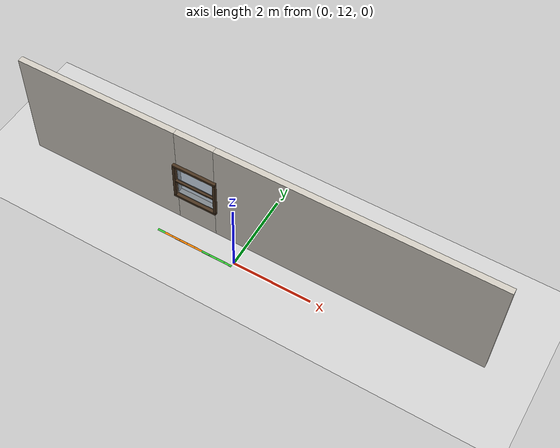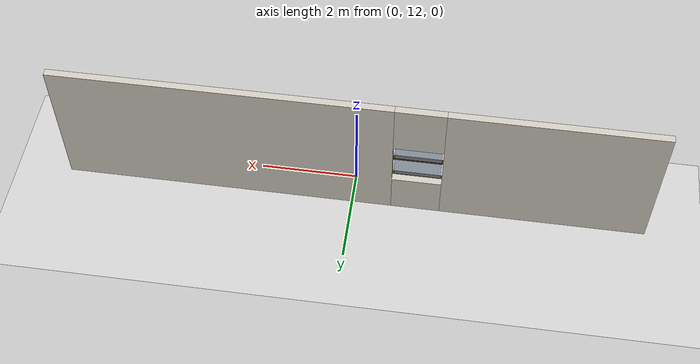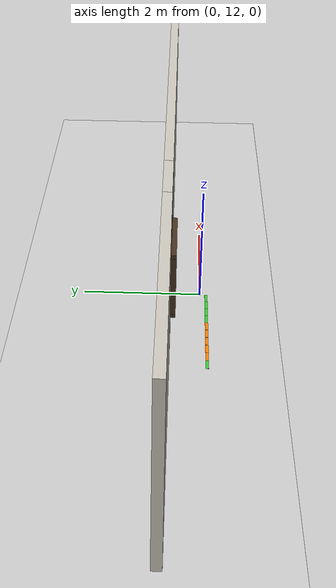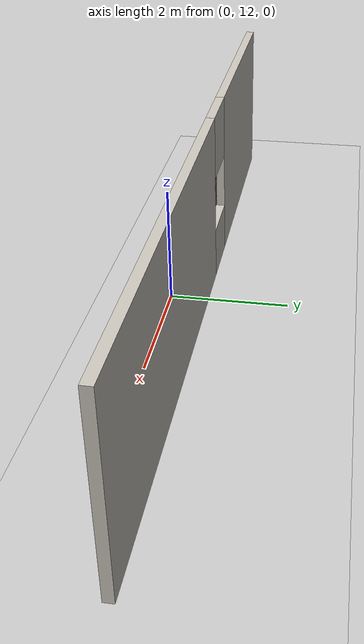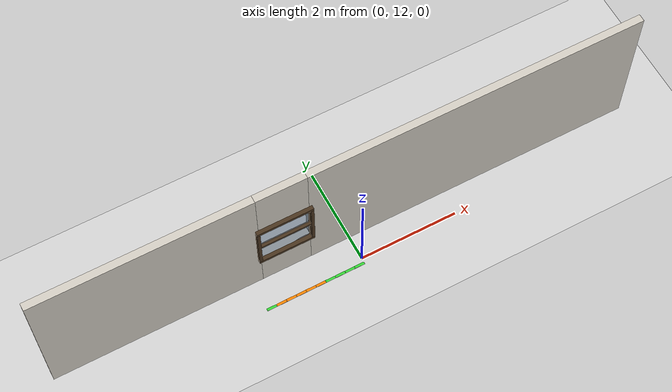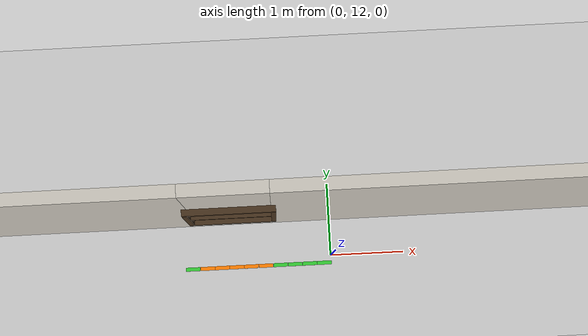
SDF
<?xml version="1.0" ?>
<sdf version='1.6'>
  <world name='strip_map_test'>

    <!-- ====== PHYSICS ====== -->
    <gravity>0 0 -9.8</gravity>
    <physics name='default_physics' default='0' type='ode'>
      <max_step_size>0.001</max_step_size>
      <real_time_factor>1</real_time_factor>
      <real_time_update_rate>1000</real_time_update_rate>
    </physics>

    <!-- ====== SCENE ====== -->
    <scene>
      <ambient>0.6 0.6 0.6 1</ambient>
      <background>0.5 0.5 0.5 1</background>
      <shadows>1</shadows>
    </scene>

    <!-- ====== SUN ====== -->
    <light name='sun' type='directional'>
      <cast_shadows>1</cast_shadows>
      <pose>0 0 10 0 -0 0</pose>
      <diffuse>0.8 0.8 0.8 1</diffuse>
      <specular>0.2 0.2 0.2 1</specular>
      <direction>-0.5 0.1 -0.9</direction>
    </light>

    <!-- ====== GROUND PLANE ====== -->
    <model name='ground_plane'>
      <static>1</static>
      <link name='link'>
        <collision name='collision'>
          <geometry><plane><normal>0 0 1</normal><size>100 100</size></plane></geometry>
        </collision>
        <visual name='visual'>
          <cast_shadows>0</cast_shadows>
          <geometry><plane><normal>0 0 1</normal><size>100 100</size></plane></geometry>
          <material><script>
            <uri>file://media/materials/scripts/gazebo.material</uri>
            <name>Gazebo/Grey</name>
          </script></material>
        </visual>
      </link>
    </model>

    <model name='test_wall'>
      <static>1</static>
      <pose>0 0 0 0 0 0</pose>
      <link name='link'>

        <!-- seg_L: x=-6.0..-1.8  width=4.2  cx=-3.9 -->
        <visual name='seg_L'>
          <pose>-3.9 12.575 1.5 0 0 0</pose>
          <geometry><box><size>4.2 0.15 3.0</size></box></geometry>
          <material>
            <ambient>0.80 0.78 0.74 1</ambient>
            <diffuse>0.80 0.78 0.74 1</diffuse>
            <specular>0.02 0.02 0.02 1</specular>
          </material>
        </visual>
        <collision name='cL'>
          <pose>-3.9 12.575 1.5 0 0 0</pose>
          <geometry><box><size>4.2 0.15 3.0</size></box></geometry>
        </collision>

        <!-- win_bot: below sill  x=-1.8..-0.8  w=1.0  z=0..0.9  cz=0.45 -->
        <visual name='win_bot'>
          <pose>-1.3 12.575 0.45 0 0 0</pose>
          <geometry><box><size>1.0 0.15 0.9</size></box></geometry>
          <material>
            <ambient>0.80 0.78 0.74 1</ambient>
            <diffuse>0.80 0.78 0.74 1</diffuse>
            <specular>0.02 0.02 0.02 1</specular>
          </material>
        </visual>
        <collision name='cWb'>
          <pose>-1.3 12.575 0.45 0 0 0</pose>
          <geometry><box><size>1.0 0.15 0.9</size></box></geometry>
        </collision>

        <!-- win_top: above head  x=-1.8..-0.8  w=1.0  z=1.9..3.0  cz=2.45 -->
        <visual name='win_top'>
          <pose>-1.3 12.575 2.45 0 0 0</pose>
          <geometry><box><size>1.0 0.15 1.1</size></box></geometry>
          <material>
            <ambient>0.80 0.78 0.74 1</ambient>
            <diffuse>0.80 0.78 0.74 1</diffuse>
            <specular>0.02 0.02 0.02 1</specular>
          </material>
        </visual>
        <collision name='cWt'>
          <pose>-1.3 12.575 2.45 0 0 0</pose>
          <geometry><box><size>1.0 0.15 1.1</size></box></geometry>
        </collision>

        <!-- seg_R: x=-0.8..+6.0  width=6.8  cx=+2.6 -->
        <visual name='seg_R'>
          <pose>2.6 12.575 1.5 0 0 0</pose>
          <geometry><box><size>6.8 0.15 3.0</size></box></geometry>
          <material>
            <ambient>0.80 0.78 0.74 1</ambient>
            <diffuse>0.80 0.78 0.74 1</diffuse>
            <specular>0.02 0.02 0.02 1</specular>
          </material>
        </visual>
        <collision name='cR'>
          <pose>2.6 12.575 1.5 0 0 0</pose>
          <geometry><box><size>6.8 0.15 3.0</size></box></geometry>
        </collision>

      </link>
    </model>

    <model name='window_frame'>
      <static>1</static>
      <pose>0 0 0 0 0 0</pose>
      <link name='link'>

        <!-- top rail  z=1.9 -->
        <visual name='top'>
          <pose>-1.3 12.47 1.93 0 0 0</pose>
          <geometry><box><size>1.12 0.10 0.06</size></box></geometry>
          <material>
            <ambient>0.22 0.16 0.10 1</ambient>
            <diffuse>0.28 0.20 0.12 1</diffuse>
            <specular>0.05 0.05 0.05 1</specular>
          </material>
        </visual>

        <!-- bottom rail  z=0.9 -->
        <visual name='bot'>
          <pose>-1.3 12.47 0.87 0 0 0</pose>
          <geometry><box><size>1.12 0.10 0.06</size></box></geometry>
          <material>
            <ambient>0.22 0.16 0.10 1</ambient>
            <diffuse>0.28 0.20 0.12 1</diffuse>
            <specular>0.05 0.05 0.05 1</specular>
          </material>
        </visual>

        <!-- left stile  x=-1.8 -->
        <visual name='left'>
          <pose>-1.83 12.47 1.4 0 0 0</pose>
          <geometry><box><size>0.06 0.10 1.0</size></box></geometry>
          <material>
            <ambient>0.22 0.16 0.10 1</ambient>
            <diffuse>0.28 0.20 0.12 1</diffuse>
            <specular>0.05 0.05 0.05 1</specular>
          </material>
        </visual>

        <!-- right stile  x=-0.8 -->
        <visual name='right'>
          <pose>-0.77 12.47 1.4 0 0 0</pose>
          <geometry><box><size>0.06 0.10 1.0</size></box></geometry>
          <material>
            <ambient>0.22 0.16 0.10 1</ambient>
            <diffuse>0.28 0.20 0.12 1</diffuse>
            <specular>0.05 0.05 0.05 1</specular>
          </material>
        </visual>

        <!-- mid rail (horizontal divider at z=1.4) -->
        <visual name='mid'>
          <pose>-1.3 12.47 1.4 0 0 0</pose>
          <geometry><box><size>1.0 0.08 0.04</size></box></geometry>
          <material>
            <ambient>0.22 0.16 0.10 1</ambient>
            <diffuse>0.28 0.20 0.12 1</diffuse>
            <specular>0.05 0.05 0.05 1</specular>
          </material>
        </visual>

        <!-- glass pane (light blue, slightly transparent-ish) -->
        <visual name='glass'>
          <pose>-1.3 12.50 1.4 0 0 0</pose>
          <geometry><box><size>0.94 0.02 0.94</size></box></geometry>
          <material>
            <ambient>0.55 0.65 0.75 0.6</ambient>
            <diffuse>0.55 0.65 0.75 0.6</diffuse>
            <specular>0.8 0.8 0.9 1</specular>
          </material>
        </visual>

      </link>
    </model>

    <!-- Strip boundary markers on floor (10 strips, 0.203m each, starting x=0 going -x) -->
    <model name='strip_marker_0'><static>1</static><pose>-0.101 11.9 0.002 0 0 0</pose>
      <link name='link'><visual name='v'><geometry><box><size>0.200 0.05 0.004</size></box></geometry>
        <material><ambient>0.2 0.8 0.2 1</ambient><diffuse>0.2 0.8 0.2 1</diffuse></material></visual></link></model>

    <model name='strip_marker_1'><static>1</static><pose>-0.304 11.9 0.002 0 0 0</pose>
      <link name='link'><visual name='v'><geometry><box><size>0.200 0.05 0.004</size></box></geometry>
        <material><ambient>0.2 0.8 0.2 1</ambient><diffuse>0.2 0.8 0.2 1</diffuse></material></visual></link></model>

    <model name='strip_marker_2'><static>1</static><pose>-0.507 11.9 0.002 0 0 0</pose>
      <link name='link'><visual name='v'><geometry><box><size>0.200 0.05 0.004</size></box></geometry>
        <material><ambient>0.2 0.8 0.2 1</ambient><diffuse>0.2 0.8 0.2 1</diffuse></material></visual></link></model>

    <model name='strip_marker_3'><static>1</static><pose>-0.710 11.9 0.002 0 0 0</pose>
      <link name='link'><visual name='v'><geometry><box><size>0.200 0.05 0.004</size></box></geometry>
        <material><ambient>0.2 0.8 0.2 1</ambient><diffuse>0.2 0.8 0.2 1</diffuse></material></visual></link></model>

    <!-- strips 4-8 enter window zone: orange markers -->
    <model name='strip_marker_4'><static>1</static><pose>-0.913 11.9 0.002 0 0 0</pose>
      <link name='link'><visual name='v'><geometry><box><size>0.200 0.05 0.004</size></box></geometry>
        <material><ambient>1.0 0.5 0.0 1</ambient><diffuse>1.0 0.5 0.0 1</diffuse></material></visual></link></model>

    <model name='strip_marker_5'><static>1</static><pose>-1.116 11.9 0.002 0 0 0</pose>
      <link name='link'><visual name='v'><geometry><box><size>0.200 0.05 0.004</size></box></geometry>
        <material><ambient>1.0 0.5 0.0 1</ambient><diffuse>1.0 0.5 0.0 1</diffuse></material></visual></link></model>

    <model name='strip_marker_6'><static>1</static><pose>-1.319 11.9 0.002 0 0 0</pose>
      <link name='link'><visual name='v'><geometry><box><size>0.200 0.05 0.004</size></box></geometry>
        <material><ambient>1.0 0.5 0.0 1</ambient><diffuse>1.0 0.5 0.0 1</diffuse></material></visual></link></model>

    <model name='strip_marker_7'><static>1</static><pose>-1.522 11.9 0.002 0 0 0</pose>
      <link name='link'><visual name='v'><geometry><box><size>0.200 0.05 0.004</size></box></geometry>
        <material><ambient>1.0 0.5 0.0 1</ambient><diffuse>1.0 0.5 0.0 1</diffuse></material></visual></link></model>

    <model name='strip_marker_8'><static>1</static><pose>-1.725 11.9 0.002 0 0 0</pose>
      <link name='link'><visual name='v'><geometry><box><size>0.200 0.05 0.004</size></box></geometry>
        <material><ambient>1.0 0.5 0.0 1</ambient><diffuse>1.0 0.5 0.0 1</diffuse></material></visual></link></model>

    <!-- strip 9 back to full ON: green -->
    <model name='strip_marker_9'><static>1</static><pose>-1.928 11.9 0.002 0 0 0</pose>
      <link name='link'><visual name='v'><geometry><box><size>0.200 0.05 0.004</size></box></geometry>
        <material><ambient>0.2 0.8 0.2 1</ambient><diffuse>0.2 0.8 0.2 1</diffuse></material></visual></link></model>

  </world>
</sdf>
